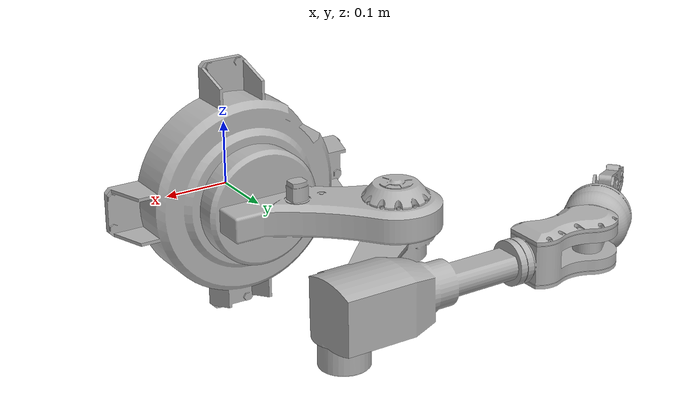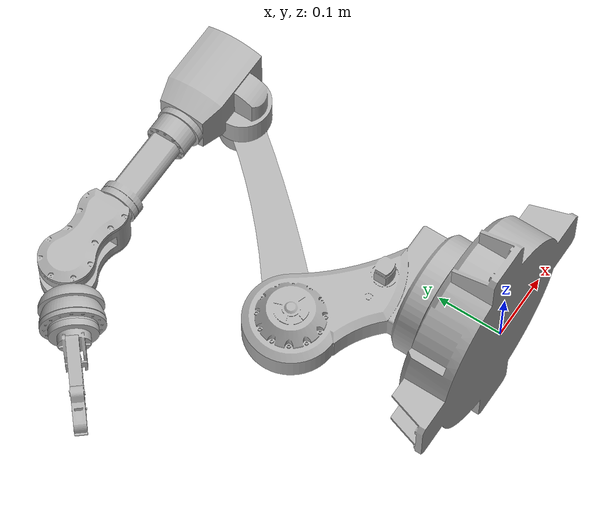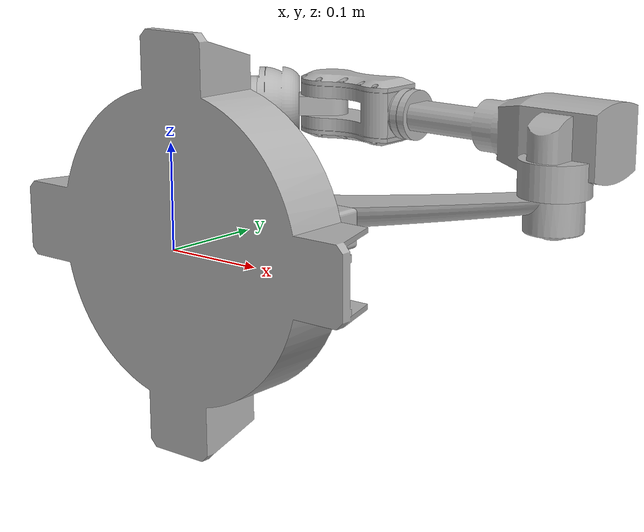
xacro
<?xml version="1.0" ?>
<robot name="arm_test" xmlns:xacro="http://www.ros.org/wiki/xacro">

<xacro:include filename="$(find arm_test_description)/urdf/materials.xacro" />
<xacro:include filename="$(find arm_test_description)/urdf/arm_test.trans" />
<xacro:include filename="$(find arm_test_description)/urdf/arm_test.gazebo" />
<link name="base_link">
  <inertial>
    <origin xyz="0.0014318760373342933 0.03866997643434408 -0.0014321257860467993" rpy="0 0 0"/>
    <mass value="45.1119373868139"/>
    <inertia ixx="0.284752" iyy="0.519344" izz="0.284753" ixy="-0.000327" iyz="0.000327" ixz="-0.006278"/>
  </inertial>
  <visual>
    <origin xyz="0 0 0" rpy="0 0 0"/>
    <geometry>
      <mesh filename="package://arm_test_description/meshes/base_link.stl" scale="0.001 0.001 0.001"/>
    </geometry>
    <material name="silver"/>
  </visual>
  <collision>
    <origin xyz="0 0 0" rpy="0 0 0"/>
    <geometry>
      <mesh filename="package://arm_test_description/meshes/base_link.stl" scale="0.001 0.001 0.001"/>
    </geometry>
  </collision>
</link>

<link name="Jaw_1_1">
  <inertial>
    <origin xyz="-0.05826892820244676 0.06467216906301214 0.004415123668961306" rpy="0 0 0"/>
    <mass value="18.704450617645122"/>
    <inertia ixx="0.097404" iyy="0.129546" izz="0.190806" ixy="0.073023" iyz="-0.004999" ixz="0.005523"/>
  </inertial>
  <visual>
    <origin xyz="-0.0 -0.107 -0.0" rpy="0 0 0"/>
    <geometry>
      <mesh filename="package://arm_test_description/meshes/Jaw_1_1.stl" scale="0.001 0.001 0.001"/>
    </geometry>
    <material name="silver"/>
  </visual>
  <collision>
    <origin xyz="-0.0 -0.107 -0.0" rpy="0 0 0"/>
    <geometry>
      <mesh filename="package://arm_test_description/meshes/Jaw_1_1.stl" scale="0.001 0.001 0.001"/>
    </geometry>
  </collision>
</link>

<link name="Jaw_2_1">
  <inertial>
    <origin xyz="0.09951491028390105 0.0946825741557224 -0.01669516112261004" rpy="0 0 0"/>
    <mass value="6.556378389845636"/>
    <inertia ixx="0.068636" iyy="0.069759" izz="0.136247" ixy="-0.065456" iyz="0.000271" ixz="0.000135"/>
  </inertial>
  <visual>
    <origin xyz="0.147437 -0.247 0.018975" rpy="0 0 0"/>
    <geometry>
      <mesh filename="package://arm_test_description/meshes/Jaw_2_1.stl" scale="0.001 0.001 0.001"/>
    </geometry>
    <material name="silver"/>
  </visual>
  <collision>
    <origin xyz="0.147437 -0.247 0.018975" rpy="0 0 0"/>
    <geometry>
      <mesh filename="package://arm_test_description/meshes/Jaw_2_1.stl" scale="0.001 0.001 0.001"/>
    </geometry>
  </collision>
</link>

<link name="Jaw_3_1">
  <inertial>
    <origin xyz="0.2807790789659747 0.3549619036683196 0.5472923013322715" rpy="0 0 0"/>
    <mass value="11.976753733142749"/>
    <inertia ixx="0.017672" iyy="0.066517" izz="0.069719" ixy="0.003912" iyz="-0.001986" ixz="0.002229"/>
  </inertial>
  <visual>
    <origin xyz="0.222207 -0.176652 0.512955" rpy="0 0 0"/>
    <geometry>
      <mesh filename="package://arm_test_description/meshes/Jaw_3_1.stl" scale="0.001 0.001 0.001"/>
    </geometry>
    <material name="silver"/>
  </visual>
  <collision>
    <origin xyz="0.222207 -0.176652 0.512955" rpy="0 0 0"/>
    <geometry>
      <mesh filename="package://arm_test_description/meshes/Jaw_3_1.stl" scale="0.001 0.001 0.001"/>
    </geometry>
  </collision>
</link>

<link name="jaw_4__1">
  <inertial>
    <origin xyz="-0.08913620043947107 9.740879267639002e-07 0.00061962124664941" rpy="0 0 0"/>
    <mass value="4.514973391735688"/>
    <inertia ixx="0.004301" iyy="0.012007" izz="0.010833" ixy="-0.0" iyz="0.0" ixz="4.5e-05"/>
  </inertial>
  <visual>
    <origin xyz="0.125544 -0.539487 -0.039374" rpy="0 0 0"/>
    <geometry>
      <mesh filename="package://arm_test_description/meshes/jaw_4__1.stl" scale="0.001 0.001 0.001"/>
    </geometry>
    <material name="silver"/>
  </visual>
  <collision>
    <origin xyz="0.125544 -0.539487 -0.039374" rpy="0 0 0"/>
    <geometry>
      <mesh filename="package://arm_test_description/meshes/jaw_4__1.stl" scale="0.001 0.001 0.001"/>
    </geometry>
  </collision>
</link>

<link name="jaw_5_1">
  <inertial>
    <origin xyz="-0.04599553530114775 -0.038723095334457724 0.022177532427640676" rpy="0 0 0"/>
    <mass value="2.924309571140033"/>
    <inertia ixx="0.002716" iyy="0.00284" izz="0.00316" ixy="-0.00035" iyz="1.9e-05" ixz="2.2e-05"/>
  </inertial>
  <visual>
    <origin xyz="0.260779 -0.539487 -0.017814" rpy="0 0 0"/>
    <geometry>
      <mesh filename="package://arm_test_description/meshes/jaw_5_1.stl" scale="0.001 0.001 0.001"/>
    </geometry>
    <material name="silver"/>
  </visual>
  <collision>
    <origin xyz="0.260779 -0.539487 -0.017814" rpy="0 0 0"/>
    <geometry>
      <mesh filename="package://arm_test_description/meshes/jaw_5_1.stl" scale="0.001 0.001 0.001"/>
    </geometry>
  </collision>
</link>

<link name="jaw_6_1">
  <inertial>
    <origin xyz="-0.01237014963032973 -0.010379869185371593 8.573754355404445e-05" rpy="0 0 0"/>
    <mass value="0.5965066982864575"/>
    <inertia ixx="0.000308" iyy="0.000304" izz="0.000255" ixy="1.2e-05" iyz="-0.0" ixz="-0.0"/>
  </inertial>
  <visual>
    <origin xyz="0.333189 -0.478598 -0.040318" rpy="0 0 0"/>
    <geometry>
      <mesh filename="package://arm_test_description/meshes/jaw_6_1.stl" scale="0.001 0.001 0.001"/>
    </geometry>
    <material name="silver"/>
  </visual>
  <collision>
    <origin xyz="0.333189 -0.478598 -0.040318" rpy="0 0 0"/>
    <geometry>
      <mesh filename="package://arm_test_description/meshes/jaw_6_1.stl" scale="0.001 0.001 0.001"/>
    </geometry>
  </collision>
</link>

<link name="jaw_7_1">
  <inertial>
    <origin xyz="-0.03556115721537706 -0.04147482434362548 -0.019286159208784896" rpy="0 0 0"/>
    <mass value="0.30369796998857107"/>
    <inertia ixx="0.000187" iyy="0.000248" izz="0.000359" ixy="-0.000169" iyz="-5.4e-05" ixz="-6.4e-05"/>
  </inertial>
  <visual>
    <origin xyz="0.364928 -0.466089 -0.080966" rpy="0 0 0"/>
    <geometry>
      <mesh filename="package://arm_test_description/meshes/jaw_7_1.stl" scale="0.001 0.001 0.001"/>
    </geometry>
    <material name="silver"/>
  </visual>
  <collision>
    <origin xyz="0.364928 -0.466089 -0.080966" rpy="0 0 0"/>
    <geometry>
      <mesh filename="package://arm_test_description/meshes/jaw_7_1.stl" scale="0.001 0.001 0.001"/>
    </geometry>
  </collision>
</link>

<link name="jaw_7__1__1">
  <inertial>
    <origin xyz="-0.03528971491218791 -0.041474824343625205 0.019778557811269887" rpy="0 0 0"/>
    <mass value="0.30369796998857107"/>
    <inertia ixx="0.000189" iyy="0.000248" izz="0.000357" ixy="-0.000168" iyz="5.6e-05" ixz="6.6e-05"/>
  </inertial>
  <visual>
    <origin xyz="0.36549 -0.466089 -0.000115" rpy="0 0 0"/>
    <geometry>
      <mesh filename="package://arm_test_description/meshes/jaw_7__1__1.stl" scale="0.001 0.001 0.001"/>
    </geometry>
    <material name="silver"/>
  </visual>
  <collision>
    <origin xyz="0.36549 -0.466089 -0.000115" rpy="0 0 0"/>
    <geometry>
      <mesh filename="package://arm_test_description/meshes/jaw_7__1__1.stl" scale="0.001 0.001 0.001"/>
    </geometry>
  </collision>
</link>

<joint name="Rev1" type="continuous">
  <origin xyz="0.0 0.107 0.0" rpy="0 0 0"/>
  <parent link="base_link"/>
  <child link="Jaw_1_1"/>
  <axis xyz="0.0 1.0 0.0"/>
</joint>

<joint name="Rev2" type="continuous">
  <origin xyz="-0.147437 0.14 -0.018975" rpy="0 0 0"/>
  <parent link="Jaw_1_1"/>
  <child link="Jaw_2_1"/>
  <axis xyz="0.006953 0.0 0.999976"/>
</joint>

<joint name="Rev3" type="continuous">
  <origin xyz="-0.07477 -0.070348 -0.49398" rpy="0 0 0"/>
  <parent link="Jaw_2_1"/>
  <child link="Jaw_3_1"/>
  <axis xyz="0.006953 0.0 0.999976"/>
</joint>

<joint name="Rev4" type="continuous">
  <origin xyz="0.096663 0.362835 0.552329" rpy="0 0 0"/>
  <parent link="Jaw_3_1"/>
  <child link="jaw_4__1"/>
  <axis xyz="0.999976 -0.0 -0.006953"/>
</joint>

<joint name="Rev5" type="continuous">
  <origin xyz="-0.135235 0.0 -0.02156" rpy="0 0 0"/>
  <parent link="jaw_4__1"/>
  <child link="jaw_5_1"/>
  <axis xyz="-0.006953 -0.0 -0.999976"/>
</joint>

<joint name="Rev6" type="continuous">
  <origin xyz="-0.07241 -0.060889 0.022504" rpy="0 0 0"/>
  <parent link="jaw_5_1"/>
  <child link="jaw_6_1"/>
  <axis xyz="0.766026 0.642788 -0.005327"/>
</joint>

<joint name="Rev7" type="continuous">
  <origin xyz="-0.031739 -0.012509 0.040648" rpy="0 0 0"/>
  <parent link="jaw_6_1"/>
  <child link="jaw_7_1"/>
  <axis xyz="0.642772 -0.766044 -0.004469"/>
</joint>

<joint name="Rigid8" type="fixed">
  <origin xyz="-0.032301 -0.012509 -0.040203" rpy="0 0 0"/>
  <parent link="jaw_6_1"/>
  <child link="jaw_7__1__1"/>
</joint>

</robot>

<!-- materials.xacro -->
<robot name="arm_test" xmlns:xacro="http://www.ros.org/wiki/xacro" >

<material name="silver">
  <color rgba="0.700 0.700 0.700 1.000"/>
</material>

</robot>

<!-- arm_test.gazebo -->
<robot name="arm_test" xmlns:xacro="http://www.ros.org/wiki/xacro" >

<xacro:property name="body_color" value="Gazebo/Silver" />

<gazebo>
  <plugin name="control" filename="libgazebo_ros_control.so"/>
</gazebo>
<gazebo reference="base_link">
  <material>${body_color}</material>
  <mu1>0.2</mu1>
  <mu2>0.2</mu2>
  <selfCollide>true</selfCollide>
  <gravity>true</gravity>
</gazebo>

<gazebo reference="Jaw_1_1">
  <material>${body_color}</material>
  <mu1>0.2</mu1>
  <mu2>0.2</mu2>
  <selfCollide>true</selfCollide>
</gazebo>

<gazebo reference="Jaw_2_1">
  <material>${body_color}</material>
  <mu1>0.2</mu1>
  <mu2>0.2</mu2>
  <selfCollide>true</selfCollide>
</gazebo>

<gazebo reference="Jaw_3_1">
  <material>${body_color}</material>
  <mu1>0.2</mu1>
  <mu2>0.2</mu2>
  <selfCollide>true</selfCollide>
</gazebo>

<gazebo reference="jaw_4__1">
  <material>${body_color}</material>
  <mu1>0.2</mu1>
  <mu2>0.2</mu2>
  <selfCollide>true</selfCollide>
</gazebo>

<gazebo reference="jaw_5_1">
  <material>${body_color}</material>
  <mu1>0.2</mu1>
  <mu2>0.2</mu2>
  <selfCollide>true</selfCollide>
</gazebo>

<gazebo reference="jaw_6_1">
  <material>${body_color}</material>
  <mu1>0.2</mu1>
  <mu2>0.2</mu2>
  <selfCollide>true</selfCollide>
</gazebo>

<gazebo reference="jaw_7_1">
  <material>${body_color}</material>
  <mu1>0.2</mu1>
  <mu2>0.2</mu2>
  <selfCollide>true</selfCollide>
</gazebo>

<gazebo reference="jaw_7__1__1">
  <material>${body_color}</material>
  <mu1>0.2</mu1>
  <mu2>0.2</mu2>
  <selfCollide>true</selfCollide>
</gazebo>

</robot>
